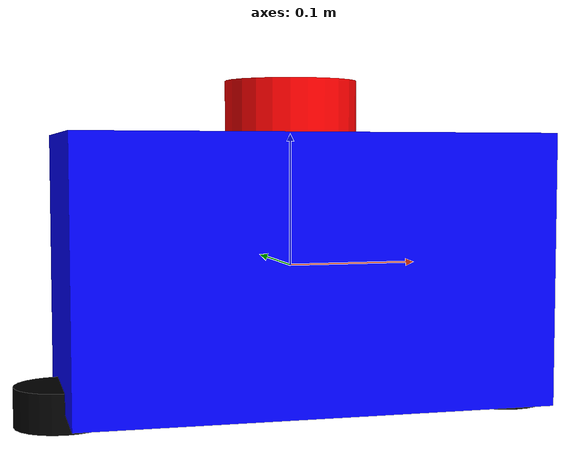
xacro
<?xml version="1.0"?>
<robot name="ackermann_robot" xmlns:xacro="http://www.ros.org/wiki/xacro">

  <!-- 机器人参数 -->
  <xacro:property name="base_length" value="0.35"/>
  <xacro:property name="base_width" value="0.19"/>
  <xacro:property name="base_height" value="0.20"/>
  <xacro:property name="wheel_radius" value="0.035"/>
  <xacro:property name="wheel_width" value="0.03"/>

  <!-- 底盘link -->
  <link name="base_link">
    <visual>
      <geometry>
        <box size="${base_length} ${base_width} ${base_height}"/>
      </geometry>
      <material name="blue">
        <color rgba="0 0 1 1"/>
      </material>
    </visual>
    <collision>
      <geometry>
        <box size="${base_length} ${base_width} ${base_height}"/>
      </geometry>
    </collision>
  </link>

  <!-- 前轮 -->
  <link name="front_wheel">
    <visual>
      <geometry>
        <cylinder radius="${wheel_radius}" length="${wheel_width}"/>
      </geometry>
      <material name="black">
        <color rgba="0 0 0 1"/>
      </material>
    </visual>
    <collision>
      <geometry>
        <cylinder radius="${wheel_radius}" length="${wheel_width}"/>
      </geometry>
    </collision>
  </link>

  <joint name="base_to_front_wheel" type="continuous">
    <parent link="base_link"/>
    <child link="front_wheel"/>
    <origin xyz="${base_length/2} 0 -${base_height/2}" rpy="0 0 0"/>
    <axis xyz="0 1 0"/>
  </joint>

  <!-- 后轮 -->
  <link name="rear_wheel">
    <visual>
      <geometry>
        <cylinder radius="${wheel_radius}" length="${wheel_width}"/>
      </geometry>
      <material name="black"/>
    </visual>
    <collision>
      <geometry>
        <cylinder radius="${wheel_radius}" length="${wheel_width}"/>
      </geometry>
    </collision>
  </link>

  <joint name="base_to_rear_wheel" type="continuous">
    <parent link="base_link"/>
    <child link="rear_wheel"/>
    <origin xyz="-${base_length/2} 0 -${base_height/2}" rpy="0 0 0"/>
    <axis xyz="0 1 0"/>
  </joint>

  <!-- 激光雷达 -->
  <link name="laser">
    <visual>
      <geometry>
        <cylinder radius="0.05" length="0.04"/>
      </geometry>
      <material name="red">
        <color rgba="1 0 0 1"/>
      </material>
    </visual>
  </link>

  <joint name="base_to_laser" type="fixed">
    <parent link="base_link"/>
    <child link="laser"/>
    <origin xyz="0 0 ${base_height/2 + 0.02}" rpy="0 0 0"/>
  </joint>

</robot>
